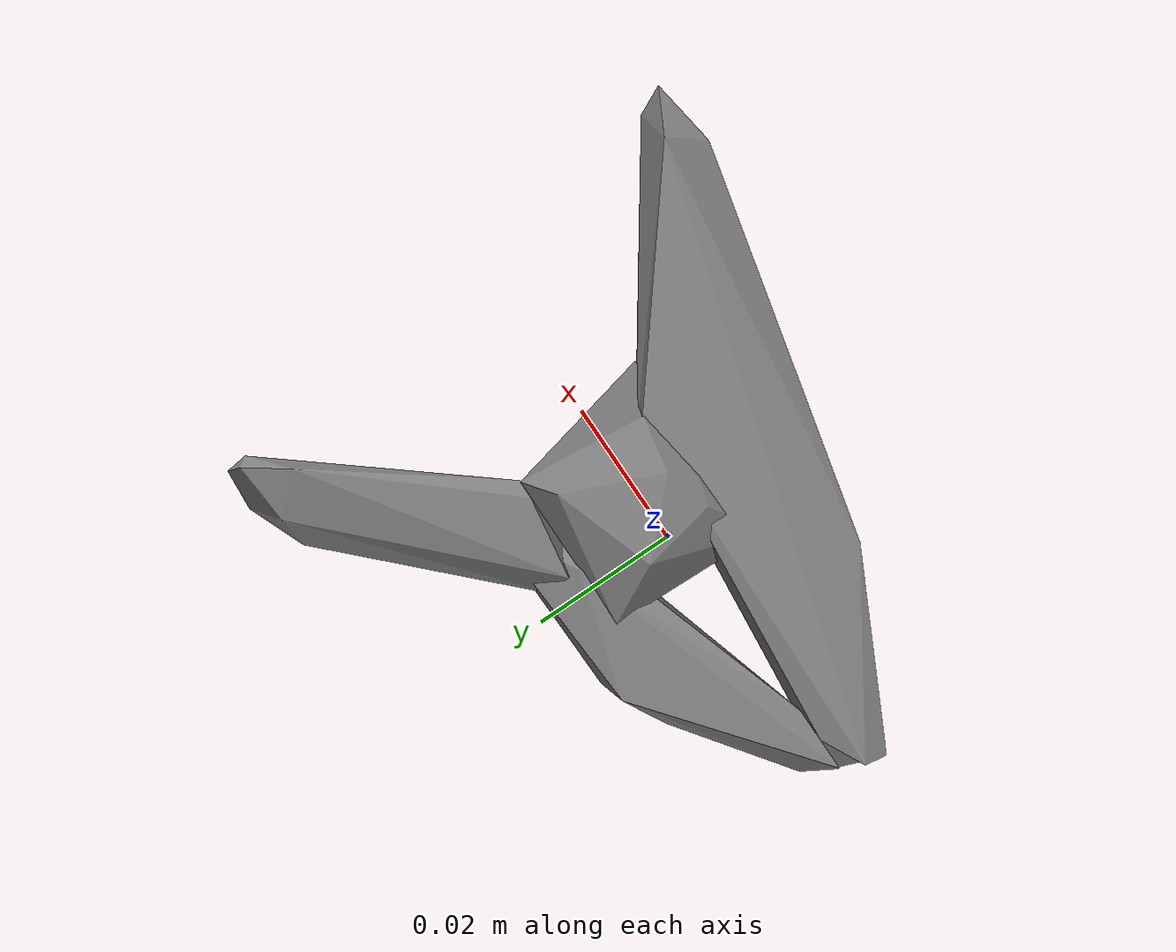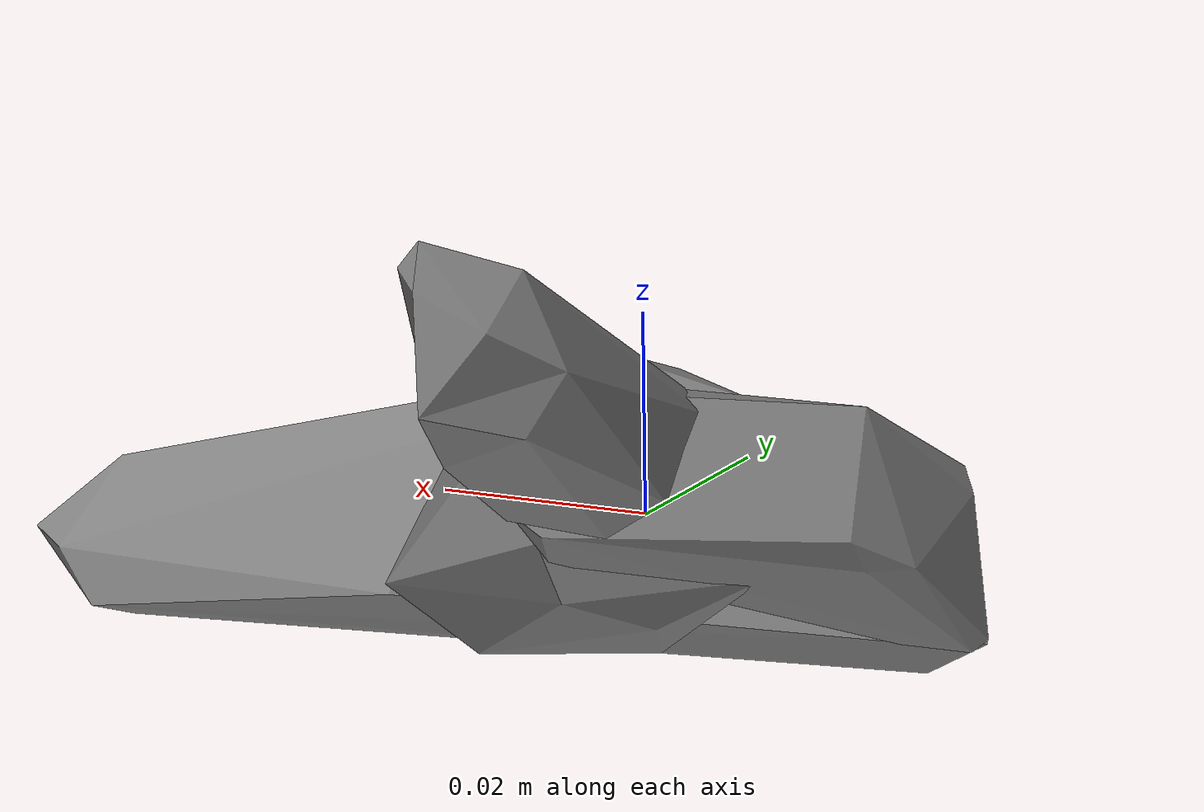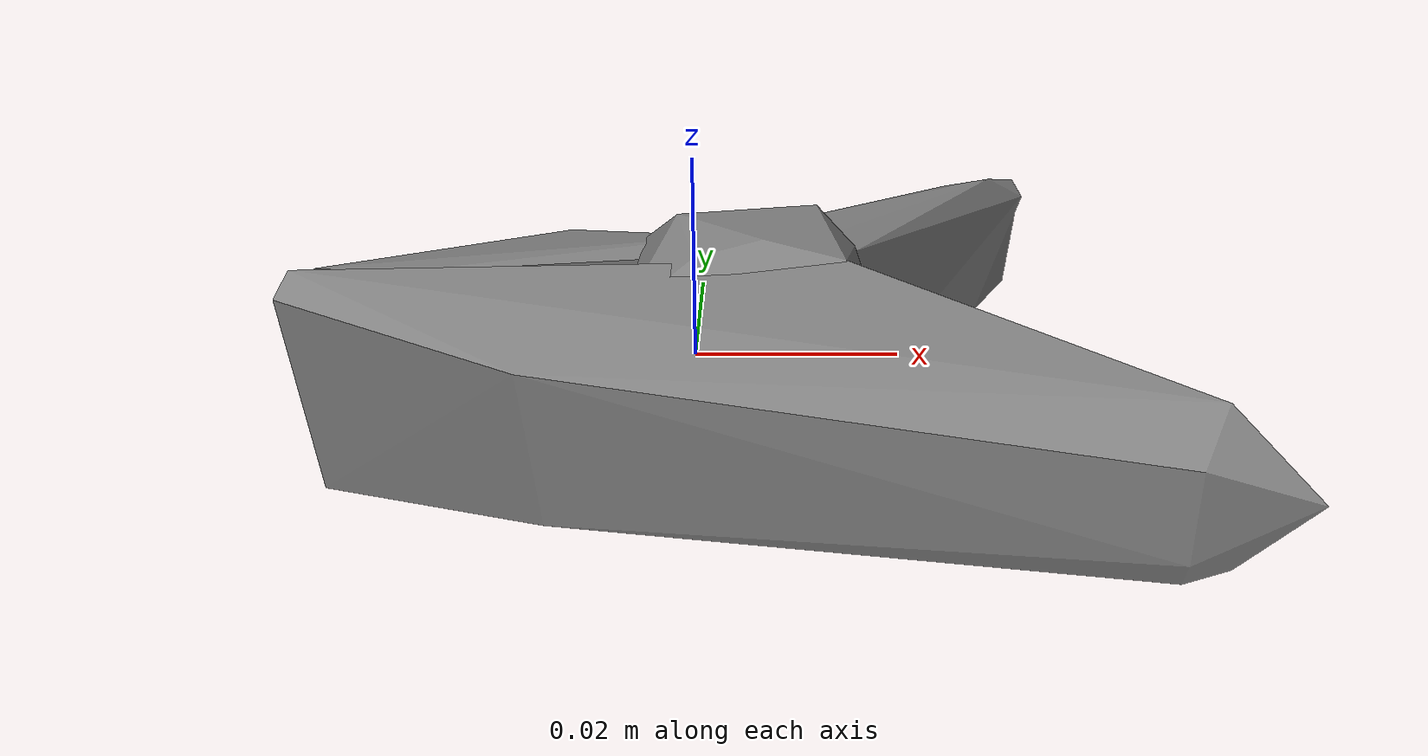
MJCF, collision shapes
<mujoco model="medium_clamp">
  <compiler angle="radian" />

  <asset>
    <mesh name="medium_clamp_visual_mesh" file="medium_clamp/textured.obj" />
    <mesh name="medium_clamp_collision_mesh_0" file="medium_clamp/textured_coacd_0.stl" />
    <mesh name="medium_clamp_collision_mesh_1" file="medium_clamp/textured_coacd_1.stl" />
    <mesh name="medium_clamp_collision_mesh_2" file="medium_clamp/textured_coacd_2.stl" />
    <mesh name="medium_clamp_collision_mesh_3" file="medium_clamp/textured_coacd_3.stl" />
    <texture name="medium_clamp_texture" type="2d" file="medium_clamp/texture_map.png" />
    <material name="medium_clamp_material" texture="medium_clamp_texture" />
  </asset>

  <worldbody>
    <body name="medium_clamp" pos="0 0 0" euler="0 0 0">
      <freejoint name="medium_clamp_joint" />
      <geom name="medium_clamp_visual_geom" type="mesh" mesh="medium_clamp_visual_mesh" material="medium_clamp_material" pos="-0.010827483056379221 0.014903599956658636 -0.012617934887942762" euler="0 0 0" contype="0" conaffinity="0" group="0" />
      <geom name="medium_clamp_collision_geom_0" type="mesh" mesh="medium_clamp_collision_mesh_0" pos="-0.010827483056379221 0.014903599956658636 -0.012617934887942762" euler="0 0 0" contype="1" conaffinity="1" group="3" />
      <geom name="medium_clamp_collision_geom_1" type="mesh" mesh="medium_clamp_collision_mesh_1" pos="-0.010827483056379221 0.014903599956658636 -0.012617934887942762" euler="0 0 0" contype="1" conaffinity="1" group="3" />
      <geom name="medium_clamp_collision_geom_2" type="mesh" mesh="medium_clamp_collision_mesh_2" pos="-0.010827483056379221 0.014903599956658636 -0.012617934887942762" euler="0 0 0" contype="1" conaffinity="1" group="3" />
      <geom name="medium_clamp_collision_geom_3" type="mesh" mesh="medium_clamp_collision_mesh_3" pos="-0.010827483056379221 0.014903599956658636 -0.012617934887942762" euler="0 0 0" contype="1" conaffinity="1" group="3" />
      <inertial pos="0 0 0" euler="0 0 0" mass="0.059" diaginertia="0.001 0.001 0.001" />
    </body>
  </worldbody>
</mujoco>
